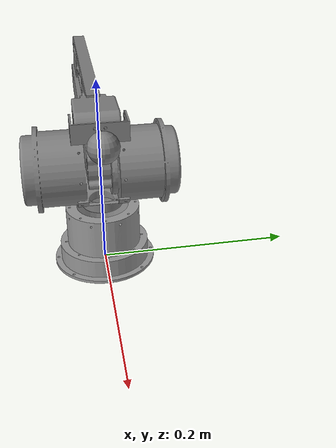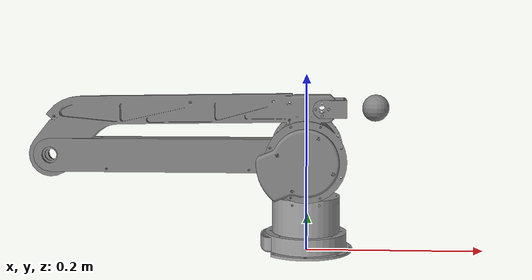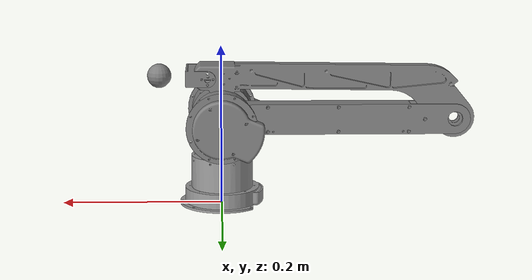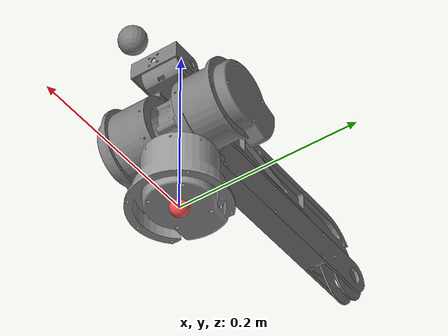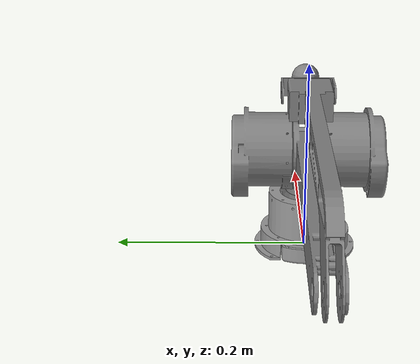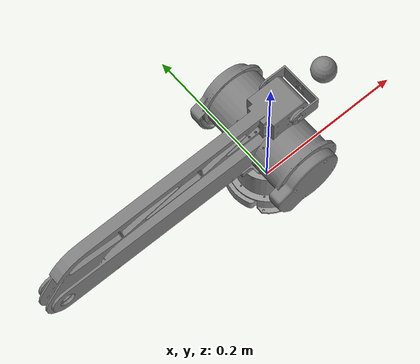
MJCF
<?xml version="1.0" ?>
<mujoco model="cobot_c1">
  <compiler angle="radian"/>

  <actuator>
    <!-- Physical limits of the actuator. -->
    <motor ctrllimited="true" ctrlrange="-80.0 80.0" joint="shoulder_joint" name="torq_j1"/>
    <motor ctrllimited="true" ctrlrange="-80.0 80.0" joint="arm_joint" name="torq_j2"/>
    <motor ctrllimited="true" ctrlrange="-80.0 80.0" joint="forearm_joint" name="torq_j3"/>
    <motor ctrllimited="true" ctrlrange="-80.0 80.0" joint="wrist1_joint" name="torq_j4"/>
    <motor ctrllimited="true" ctrlrange="-80.0 80.0" joint="gripper_yaw_joint" name="torq_j5"/>
    <motor ctrllimited="true" ctrlrange="-12.0 12.0" joint="gripper_roll_joint" name="torq_j6"/>
  </actuator>

  <asset>
    <mesh name="base" file="meshes/base.STL"/>
    <mesh name="shoulder" file="meshes/shoulder_link.STL"/>
    <mesh name="arm" file="meshes/arm_link.STL"/>
    <mesh name="forearm" file="meshes/forearm_link.STL"/>
    <mesh name="wrist1" file="meshes/wrist1_link.STL"/>

    <material name="robot_grey" rgba="0.6 0.6 0.6 1"/>
    <material name="white" rgba="1 1 1 1"/>
    <material name="black" rgba="0.25 0.25 0.25 1"/>
    <material name="off_white" rgba="0.9 0.92 0.93 1"/>
  </asset>

  <worldbody>
    <light pos="0 0 2"/>

    <body name="base">
      <site name="right_center" pos="0 0 0" size="0.01" rgba="1 0.3 0.3 1" group="2"/>
      <geom mesh="base" material="robot_grey" type="mesh" contype="0" conaffinity="0" group="1"/>
      <body name="shoulder_link" pos="0 0 0.0641">
        <inertial mass="1.127" pos="-0.0013 -0.0002 0.0433"
                  quat="0.686 0.687 -0.168 0.171"
                  diaginertia="0.00256 0.00253 0.00091"/>
        <joint name="shoulder_joint" axis="0 0 1" range="-3.14 3.14"/>

        <geom mesh="shoulder" type="mesh" contype="0" conaffinity="0" group="1" />
        <body name="arm_link" pos="0 0 0.0449">
          <inertial mass="0.281" pos="-0.123 0.0014 -0.0017"
                    quat="0.495 0.514 0.487 0.503"
                    diaginertia="0.00291 0.00288 8.7e-05"/>
          <joint name="arm_joint" axis="0 -1 0" range="-3.14 0"/>

          <geom mesh="arm" type="mesh" contype="0" conaffinity="0" group="1"/>
          <body name="forearm_link" pos="-0.2915 0 0">
            <inertial mass="0.346" pos="0.145 -0.0015 0.0369"
                      quat="0.540 0.462 0.467 0.526"
                      diaginertia="0.00568 0.00562 0.00012"/>
            <joint name="forearm_joint" axis="0 -1 0" range="0 4.2"/>

            <geom mesh="forearm" type="mesh" contype="0" conaffinity="0" group="1"/>
            <body name="wrist1_link" pos="0.3085 -0.0015 0.0537">
              <inertial pos="0.0173 0.00017 0"
                        quat="0.499 0.501 -0.499 0.501"
                        mass="0.03"
                        diaginertia="8.5e-06 7.4e-06 2.0e-06"/>
              <joint name="wrist1_joint" axis="0 -1 0"
                    range="-1.85 1.95" damping="5"/>

              <!-- Gripper Yaw -->
              <geom mesh="wrist1" type="mesh" contype="0" conaffinity="0" group="1"/>
              <body name="gripper_yaw" pos="0.06 0 0">
                <geom type="sphere" size="0.015" mass="0.01"/>
                <joint name="gripper_yaw_joint"
                      axis="0 0 1"
                      range="-3.14 3.14"
                      damping="1" armature="0.01"/>

                <!-- Gripper Roll -->
                <body name="gripper_roll">
                  <geom type="sphere" size="0.015" mass="0.01"/>
                  <joint name="gripper_roll_joint"
                        axis="1 0 0"
                        range="-1.57 1.57"
                        damping="1" armature="0.01"/>
                  <body name="right_hand" pos="0 0 0" quat="0.7071 0 0.7071 0">
                      <!-- This camera points out from the eef. -->
                      <camera mode="fixed" name="eye_in_hand" pos="0.08 0 0" quat="0 0.707108 0.707108 0" fovy="75"/>
                      <!-- To add gripper -->
                  </body>
                </body>
              </body>
            </body>
          </body>
        </body>
      </body>
    </body>
  </worldbody>

</mujoco>
